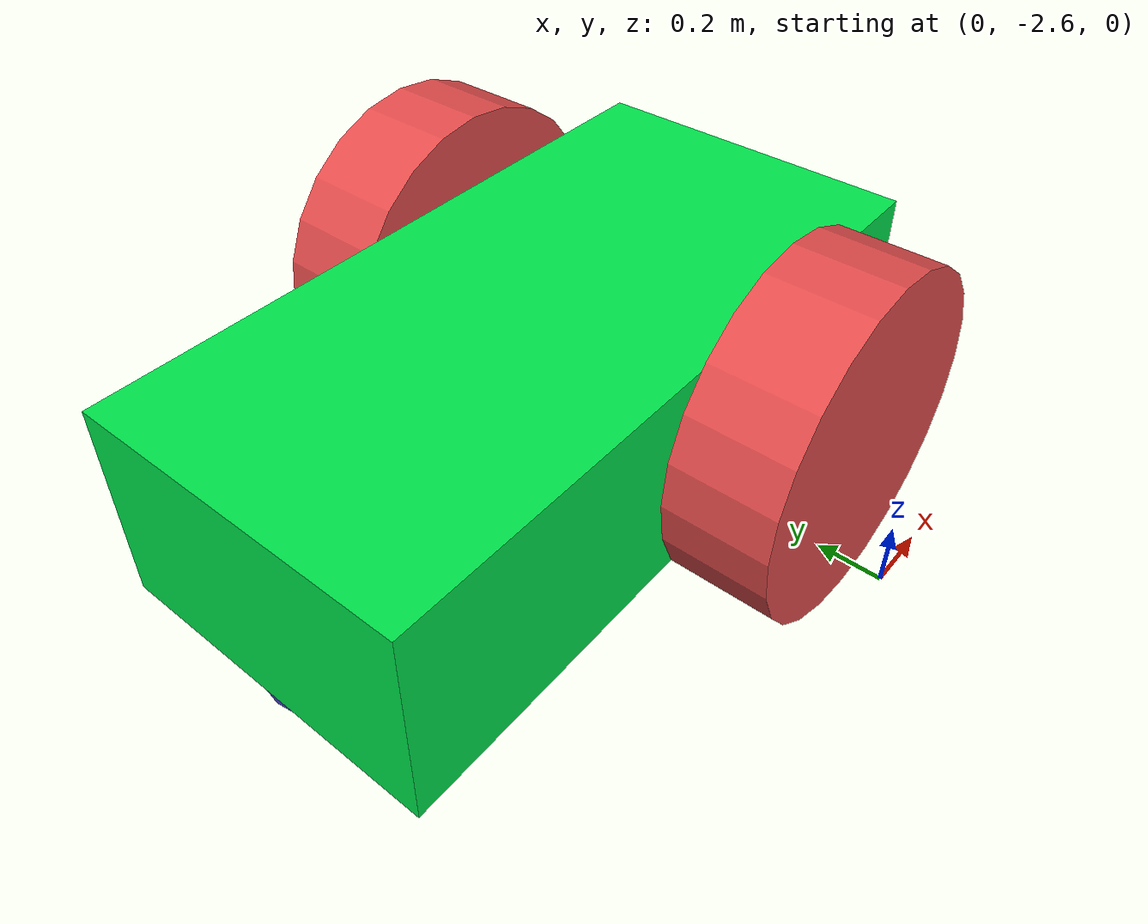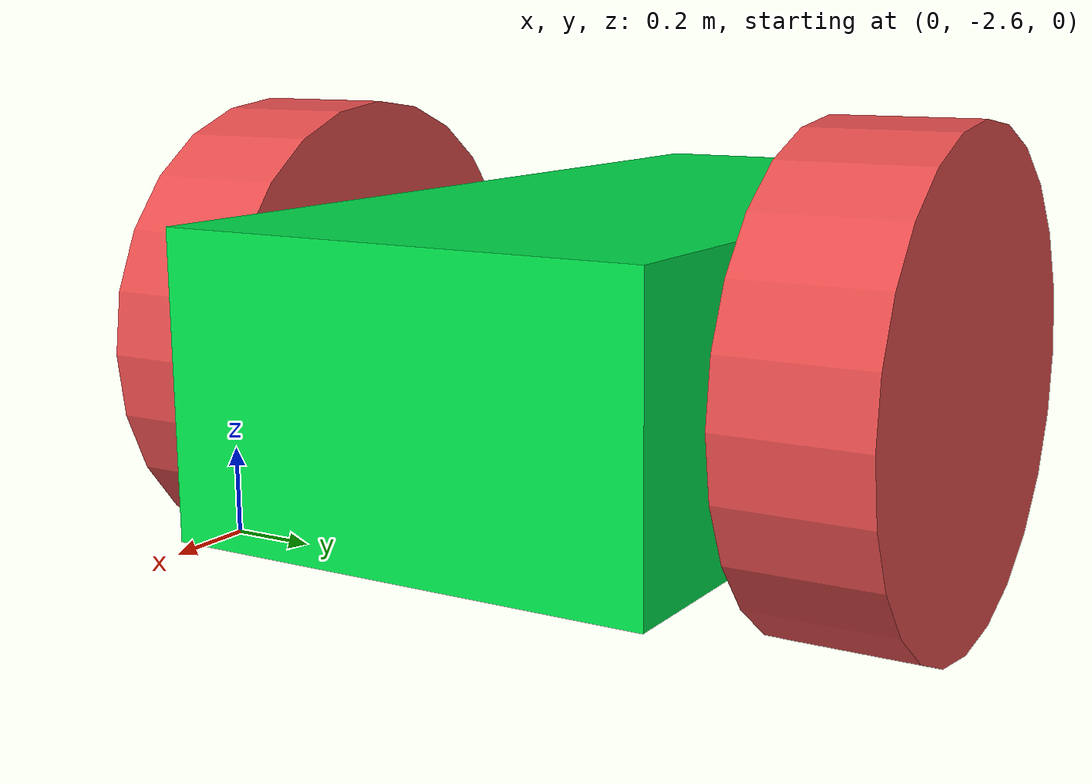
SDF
<?xml version='1.0'?>
<sdf version='1.7'>
  <model name='diff_robo'>
    <link name='link_0'>
      <inertial>
        <mass>1</mass>
        <inertia>
          <ixx>0.145833</ixx>
          <ixy>0</ixy>
          <ixz>0</ixz>
          <iyy>0.145833</iyy>
          <iyz>0</iyz>
          <izz>0.125</izz>
        </inertia>
        <pose>0 0 0 0 -0 0</pose>
      </inertial>
      <pose>-0.072508 -2.36784 0.5 1.5707 -0 0</pose>
      <gravity>1</gravity>
      <self_collide>0</self_collide>
      <kinematic>0</kinematic>
      <enable_wind>0</enable_wind>
      <visual name='visual'>
        <pose>0 0 0 0 -0 0</pose>
        <geometry>
          <cylinder>
            <radius>0.5</radius>
            <length>0.3</length>
          </cylinder>
        </geometry>
        <material>
          <lighting>1</lighting>
          <script>
            <uri>file://media/materials/scripts/gazebo.material</uri>
            <name>Gazebo/Grey</name>
          </script>
          <shader type='pixel'>
            <normal_map>__default__</normal_map>
          </shader>
          <ambient>0.9 0.3 0.3 1</ambient>
          <diffuse>0.7 0.7 0.7 1</diffuse>
          <specular>0.01 0.01 0.01 1</specular>
          <emissive>0 0 0 1</emissive>
        </material>
        <transparency>0</transparency>
        <cast_shadows>1</cast_shadows>
      </visual>
      <collision name='collision'>
        <laser_retro>0</laser_retro>
        <max_contacts>10</max_contacts>
        <pose>0 0 0 0 -0 0</pose>
        <geometry>
          <cylinder>
            <radius>0.5</radius>
            <length>0.3</length>
          </cylinder>
        </geometry>
        <surface>
          <friction>
            <ode>
              <mu>1</mu>
              <mu2>1</mu2>
              <fdir1>0 0 0</fdir1>
              <slip1>0</slip1>
              <slip2>0</slip2>
            </ode>
            <torsional>
              <coefficient>1</coefficient>
              <patch_radius>0</patch_radius>
              <surface_radius>0</surface_radius>
              <use_patch_radius>1</use_patch_radius>
              <ode>
                <slip>0</slip>
              </ode>
            </torsional>
          </friction>
          <bounce>
            <restitution_coefficient>0</restitution_coefficient>
            <threshold>1e+06</threshold>
          </bounce>
          <contact>
            <collide_without_contact>0</collide_without_contact>
            <collide_without_contact_bitmask>1</collide_without_contact_bitmask>
            <collide_bitmask>1</collide_bitmask>
            <ode>
              <soft_cfm>0</soft_cfm>
              <soft_erp>0.2</soft_erp>
              <kp>1e+13</kp>
              <kd>1</kd>
              <max_vel>0.01</max_vel>
              <min_depth>0</min_depth>
            </ode>
            <bullet>
              <split_impulse>1</split_impulse>
              <split_impulse_penetration_threshold>-0.01</split_impulse_penetration_threshold>
              <soft_cfm>0</soft_cfm>
              <soft_erp>0.2</soft_erp>
              <kp>1e+13</kp>
              <kd>1</kd>
            </bullet>
          </contact>
        </surface>
      </collision>
    </link>
    <link name='link_0_clone'>
      <inertial>
        <mass>1</mass>
        <inertia>
          <ixx>0.145833</ixx>
          <ixy>0</ixy>
          <ixz>0</ixz>
          <iyy>0.145833</iyy>
          <iyz>0</iyz>
          <izz>0.125</izz>
        </inertia>
        <pose>0 0 0 0 -0 0</pose>
      </inertial>
      <pose>-0.072508 -1.02384 0.5 1.5707 -0 0</pose>
      <gravity>1</gravity>
      <self_collide>0</self_collide>
      <kinematic>0</kinematic>
      <enable_wind>0</enable_wind>
      <visual name='visual'>
        <pose>0 0 0 0 -0 0</pose>
        <geometry>
          <cylinder>
            <radius>0.5</radius>
            <length>0.3</length>
          </cylinder>
        </geometry>
        <material>
          <lighting>1</lighting>
          <script>
            <uri>file://media/materials/scripts/gazebo.material</uri>
            <name>Gazebo/Grey</name>
          </script>
          <shader type='pixel'>
            <normal_map>__default__</normal_map>
          </shader>
          <ambient>0.9 0.3 0.3 1</ambient>
          <diffuse>0.7 0.7 0.7 1</diffuse>
          <specular>0.01 0.01 0.01 1</specular>
          <emissive>0 0 0 1</emissive>
        </material>
        <transparency>0</transparency>
        <cast_shadows>1</cast_shadows>
      </visual>
      <collision name='collision'>
        <laser_retro>0</laser_retro>
        <max_contacts>10</max_contacts>
        <pose>0 0 0 0 -0 0</pose>
        <geometry>
          <cylinder>
            <radius>0.5</radius>
            <length>0.3</length>
          </cylinder>
        </geometry>
        <surface>
          <friction>
            <ode>
              <mu>1</mu>
              <mu2>1</mu2>
              <fdir1>0 0 0</fdir1>
              <slip1>0</slip1>
              <slip2>0</slip2>
            </ode>
            <torsional>
              <coefficient>1</coefficient>
              <patch_radius>0</patch_radius>
              <surface_radius>0</surface_radius>
              <use_patch_radius>1</use_patch_radius>
              <ode>
                <slip>0</slip>
              </ode>
            </torsional>
          </friction>
          <bounce>
            <restitution_coefficient>0</restitution_coefficient>
            <threshold>1e+06</threshold>
          </bounce>
          <contact>
            <collide_without_contact>0</collide_without_contact>
            <collide_without_contact_bitmask>1</collide_without_contact_bitmask>
            <collide_bitmask>1</collide_bitmask>
            <ode>
              <soft_cfm>0</soft_cfm>
              <soft_erp>0.2</soft_erp>
              <kp>1e+13</kp>
              <kd>1</kd>
              <max_vel>0.01</max_vel>
              <min_depth>0</min_depth>
            </ode>
            <bullet>
              <split_impulse>1</split_impulse>
              <split_impulse_penetration_threshold>-0.01</split_impulse_penetration_threshold>
              <soft_cfm>0</soft_cfm>
              <soft_erp>0.2</soft_erp>
              <kp>1e+13</kp>
              <kd>1</kd>
            </bullet>
          </contact>
        </surface>
      </collision>
    </link>
    <link name='link_1'>
      <inertial>
        <mass>1</mass>
        <inertia>
          <ixx>0.166667</ixx>
          <ixy>0</ixy>
          <ixz>0</ixz>
          <iyy>0.166667</iyy>
          <iyz>0</iyz>
          <izz>0.166667</izz>
        </inertia>
        <pose>0 0 0 0 -0 0</pose>
      </inertial>
      <pose>-0.402508 -1.69584 0.5 0 -0 0</pose>
      <gravity>1</gravity>
      <self_collide>0</self_collide>
      <kinematic>0</kinematic>
      <enable_wind>0</enable_wind>
      <visual name='visual'>
        <pose>0 0 0 0 -0 0</pose>
        <geometry>
          <box>
            <size>2 1 0.6</size>
          </box>
        </geometry>
        <material>
          <lighting>1</lighting>
          <script>
            <uri>file://media/materials/scripts/gazebo.material</uri>
            <name>Gazebo/Grey</name>
          </script>
          <shader type='pixel'>
            <normal_map>__default__</normal_map>
          </shader>
          <ambient>0 0.9 0.3 1</ambient>
          <diffuse>0.7 0.7 0.7 1</diffuse>
          <specular>0.01 0.01 0.01 1</specular>
          <emissive>0 0 0 1</emissive>
        </material>
        <transparency>0</transparency>
        <cast_shadows>1</cast_shadows>
      </visual>
      <collision name='collision'>
        <laser_retro>0</laser_retro>
        <max_contacts>10</max_contacts>
        <pose>0 0 0 0 -0 0</pose>
        <geometry>
          <box>
            <size>2 1 0.6</size>
          </box>
        </geometry>
        <surface>
          <friction>
            <ode>
              <mu>1</mu>
              <mu2>1</mu2>
              <fdir1>0 0 0</fdir1>
              <slip1>0</slip1>
              <slip2>0</slip2>
            </ode>
            <torsional>
              <coefficient>1</coefficient>
              <patch_radius>0</patch_radius>
              <surface_radius>0</surface_radius>
              <use_patch_radius>1</use_patch_radius>
              <ode>
                <slip>0</slip>
              </ode>
            </torsional>
          </friction>
          <bounce>
            <restitution_coefficient>0</restitution_coefficient>
            <threshold>1e+06</threshold>
          </bounce>
          <contact>
            <collide_without_contact>0</collide_without_contact>
            <collide_without_contact_bitmask>1</collide_without_contact_bitmask>
            <collide_bitmask>1</collide_bitmask>
            <ode>
              <soft_cfm>0</soft_cfm>
              <soft_erp>0.2</soft_erp>
              <kp>1e+13</kp>
              <kd>1</kd>
              <max_vel>0.01</max_vel>
              <min_depth>0</min_depth>
            </ode>
            <bullet>
              <split_impulse>1</split_impulse>
              <split_impulse_penetration_threshold>-0.01</split_impulse_penetration_threshold>
              <soft_cfm>0</soft_cfm>
              <soft_erp>0.2</soft_erp>
              <kp>1e+13</kp>
              <kd>1</kd>
            </bullet>
          </contact>
        </surface>
      </collision>
    </link>
    <link name='link_2'>
      <inertial>
        <mass>1</mass>
        <inertia>
          <ixx>0.1</ixx>
          <ixy>0</ixy>
          <ixz>0</ixz>
          <iyy>0.1</iyy>
          <iyz>0</iyz>
          <izz>0.1</izz>
        </inertia>
        <pose>0 0 0 0 -0 0</pose>
      </inertial>
      <pose>-1.19834 -1.69584 0.2 0 -0 0</pose>
      <gravity>1</gravity>
      <self_collide>0</self_collide>
      <kinematic>0</kinematic>
      <enable_wind>0</enable_wind>
      <visual name='visual'>
        <pose>0 0 0 0 -0 0</pose>
        <geometry>
          <sphere>
            <radius>0.2</radius>
          </sphere>
        </geometry>
        <material>
          <lighting>1</lighting>
          <script>
            <uri>file://media/materials/scripts/gazebo.material</uri>
            <name>Gazebo/Grey</name>
          </script>
          <shader type='pixel'>
            <normal_map>__default__</normal_map>
          </shader>
          <ambient>0.3 0.3 0.9 1</ambient>
          <diffuse>0.7 0.7 0.7 1</diffuse>
          <specular>0.01 0.01 0.01 1</specular>
          <emissive>0 0 0 1</emissive>
        </material>
        <transparency>0</transparency>
        <cast_shadows>1</cast_shadows>
      </visual>
      <collision name='collision'>
        <laser_retro>0</laser_retro>
        <max_contacts>10</max_contacts>
        <pose>0 0 0 0 -0 0</pose>
        <geometry>
          <sphere>
            <radius>0.2</radius>
          </sphere>
        </geometry>
        <surface>
          <friction>
            <ode>
              <mu>1</mu>
              <mu2>1</mu2>
              <fdir1>0 0 0</fdir1>
              <slip1>0</slip1>
              <slip2>0</slip2>
            </ode>
            <torsional>
              <coefficient>1</coefficient>
              <patch_radius>0</patch_radius>
              <surface_radius>0</surface_radius>
              <use_patch_radius>1</use_patch_radius>
              <ode>
                <slip>0</slip>
              </ode>
            </torsional>
          </friction>
          <bounce>
            <restitution_coefficient>0</restitution_coefficient>
            <threshold>1e+06</threshold>
          </bounce>
          <contact>
            <collide_without_contact>0</collide_without_contact>
            <collide_without_contact_bitmask>1</collide_without_contact_bitmask>
            <collide_bitmask>1</collide_bitmask>
            <ode>
              <soft_cfm>0</soft_cfm>
              <soft_erp>0.2</soft_erp>
              <kp>1e+13</kp>
              <kd>1</kd>
              <max_vel>0.01</max_vel>
              <min_depth>0</min_depth>
            </ode>
            <bullet>
              <split_impulse>1</split_impulse>
              <split_impulse_penetration_threshold>-0.01</split_impulse_penetration_threshold>
              <soft_cfm>0</soft_cfm>
              <soft_erp>0.2</soft_erp>
              <kp>1e+13</kp>
              <kd>1</kd>
            </bullet>
          </contact>
        </surface>
      </collision>
    </link>
    <joint name='caster_joint' type='ball'>
      <parent>link_1</parent>
      <child>link_2</child>
      <pose>0 0 0 0 -0 0</pose>
      <physics>
        <ode>
          <limit>
            <cfm>0</cfm>
            <erp>0.2</erp>
          </limit>
          <suspension>
            <cfm>0</cfm>
            <erp>0.2</erp>
          </suspension>
        </ode>
      </physics>
    </joint>
    <joint name='left_wheel_joint' type='revolute'>
      <parent>link_1</parent>
      <child>link_0</child>
      <pose>0 0 0 0 -0.06 0</pose>
      <axis>
        <xyz>0 0 1</xyz>
        <limit>
          <lower>-1.79769e+308</lower>
          <upper>1.79769e+308</upper>
          <effort>-1</effort>
          <velocity>-1</velocity>
        </limit>
        <dynamics>
          <spring_reference>0</spring_reference>
          <spring_stiffness>0</spring_stiffness>
          <damping>0</damping>
          <friction>0</friction>
        </dynamics>
      </axis>
      <physics>
        <ode>
          <limit>
            <cfm>0</cfm>
            <erp>0.2</erp>
          </limit>
          <suspension>
            <cfm>0</cfm>
            <erp>0.2</erp>
          </suspension>
        </ode>
      </physics>
    </joint>
    <joint name='right_wheel_joint' type='revolute'>
      <parent>link_1</parent>
      <child>link_0_clone</child>
      <pose>0 0 0 0 -0 0</pose>
      <axis>
        <xyz>0 0 1</xyz>
        <limit>
          <lower>-1.79769e+308</lower>
          <upper>1.79769e+308</upper>
          <effort>-1</effort>
          <velocity>-1</velocity>
        </limit>
        <dynamics>
          <spring_reference>0</spring_reference>
          <spring_stiffness>0</spring_stiffness>
          <damping>0</damping>
          <friction>0</friction>
        </dynamics>
      </axis>
      <physics>
        <ode>
          <limit>
            <cfm>0</cfm>
            <erp>0.2</erp>
          </limit>
          <suspension>
            <cfm>0</cfm>
            <erp>0.2</erp>
          </suspension>
        </ode>
      </physics>
    </joint>
    <static>0</static>
    <allow_auto_disable>1</allow_auto_disable>
  </model>
</sdf>
